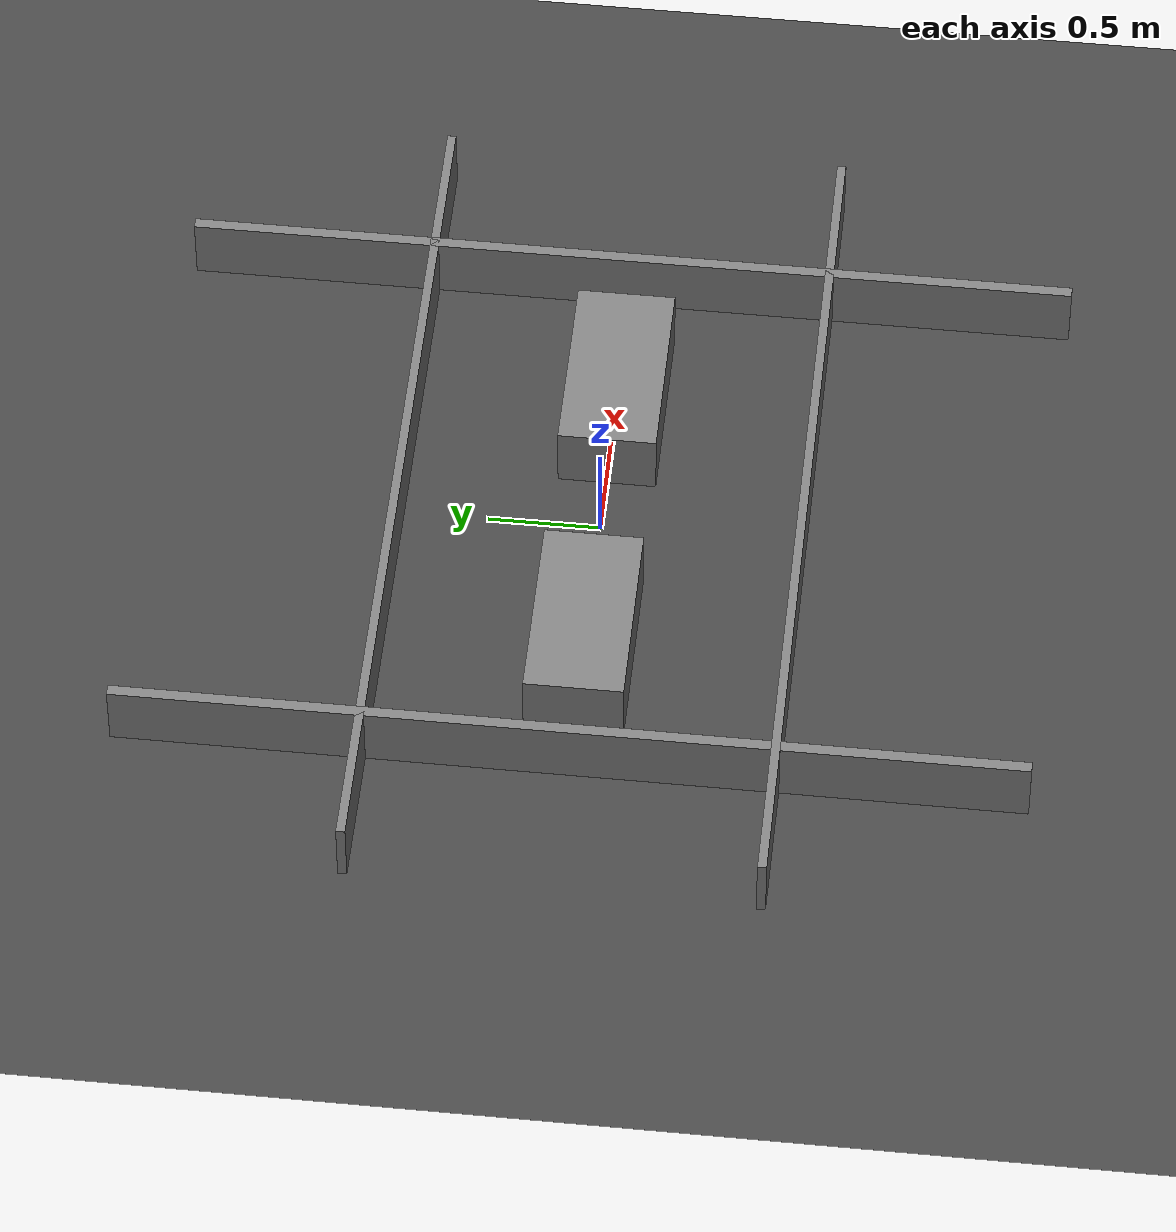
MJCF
<mujoco>
    <compiler angle="radian" meshdir="meshes/mujocoClawbot_simplified" balanceinertia="true" />
    <option timestep="0.003" tolerance="1e-10" iterations="50" cone="elliptic" impratio="10" />
    <visual>
        <rgba haze="0.151 0.151 0.151 1" />
    </visual>

    <worldbody>
        <!-- Floor -->
        <geom name="floor" pos="0 0 0" size="0 0 1" type="plane" material="matplane"/>

        <!-- Wall -->
        <geom name="wall1" pos="-1.35 0 0.151" type="box" size="0.025 2 0.151"/>
        <geom name="wall2" pos="1.35 0 0.151" type="box" size="0.025 2 0.151"/>
        <geom name="wall3" pos="0 0.9 0.151" euler="0 0 1.57" type="box" size="0.020 2 0.151"/>
        <geom name="wall4" pos="0 -0.9 0.151" euler="0 0 1.57" type="box" size="0.020 2 0.151"/>

        <!-- boxes -->
        <geom name="box1" pos="0.7 0 0.151" type="box" size="0.43 0.22 0.151"/>
        <geom name="box2" pos="-0.7 0 0.151" type="box" size="0.43 0.22 0.151"/>

        <!-- Light -->
        <light pos="0 0 5" dir="0 0 -1" directional="true" diffuse="0.8 0.8 0.8" specular="0.2 0.2 0.2" castshadow="false"/>
    </worldbody>

    <asset>
        <texture name="texplane" type="2d" builtin="checker" rgb1=".25 .25 .25" rgb2=".3 .3 .3" width="512" height="512" mark="cross" markrgb=".8 .8 .8"/>
        <material name="matplane" reflectance="0.3" texture="texplane" texrepeat="1 1" texuniform="true"/>
    </asset>
</mujoco>
